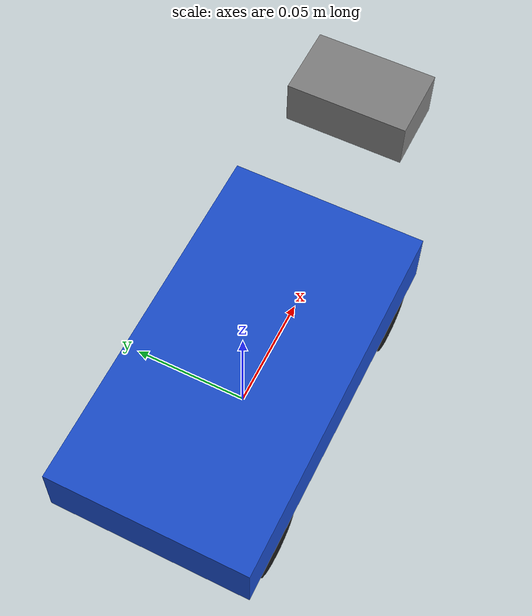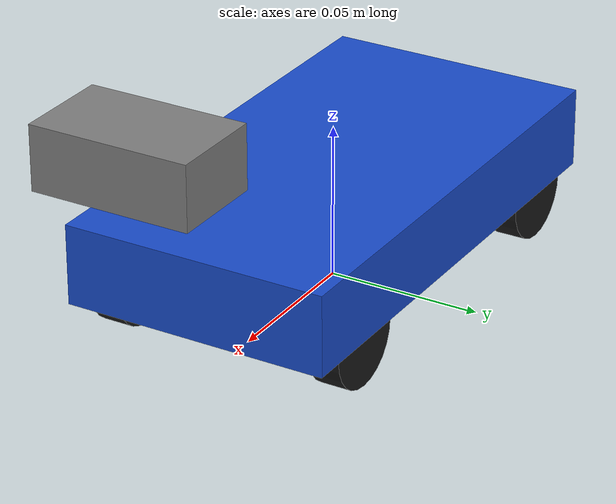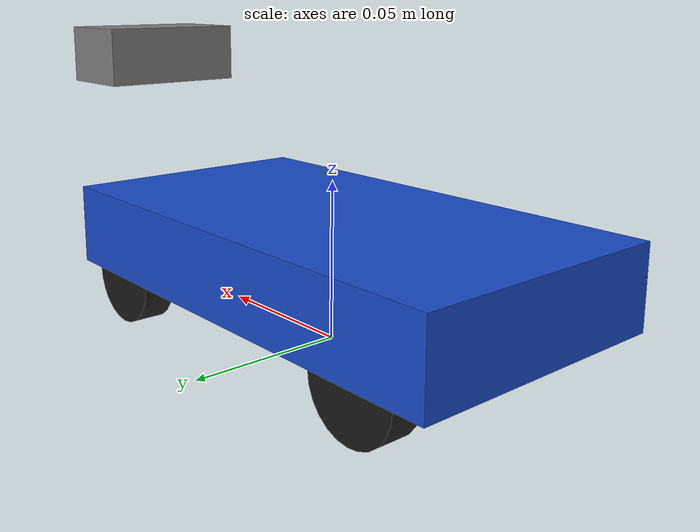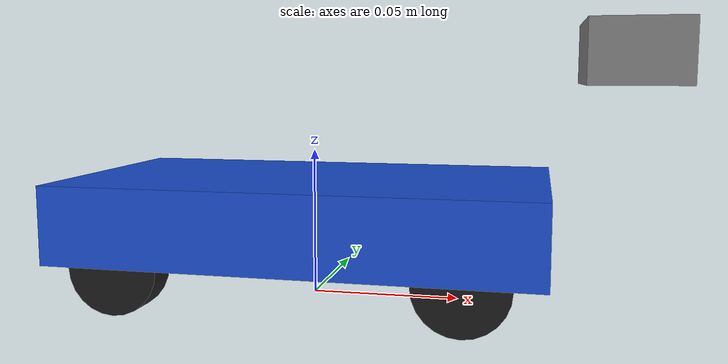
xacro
<?xml version="1.0"?>
<robot xmlns:xacro="http://www.ros.org/wiki/xacro" name="jetson_car">

  <!-- ===== Parameters ===== -->
  <xacro:property name="wheelbase" value="0.110"/>
  <xacro:property name="track_width" value="0.075"/>
  <xacro:property name="wheel_radius" value="0.015"/>
  <xacro:property name="wheel_width" value="0.010"/>
  <xacro:property name="chassis_length" value="0.160"/>
  <xacro:property name="chassis_width" value="0.086"/>
  <xacro:property name="chassis_height" value="0.026"/>
  <xacro:property name="max_steer" value="0.585"/>
  <xacro:property name="camera_x" value="0.104"/>
  <xacro:property name="camera_z" value="0.068"/>

  <xacro:property name="half_wheelbase" value="${wheelbase / 2}"/>
  <xacro:property name="half_track" value="${track_width / 2}"/>

  <!-- display.launch.py sets lock_drive_joints:=true so GUI only exposes steer sliders -->
  <xacro:arg name="lock_drive_joints" default="false"/>

  <!-- ===== Materials ===== -->
  <material name="blue"><color rgba="0.1 0.3 0.8 1.0"/></material>
  <material name="black"><color rgba="0.1 0.1 0.1 1.0"/></material>
  <material name="grey"><color rgba="0.5 0.5 0.5 1.0"/></material>

  <!-- ===== Chassis ===== -->
  <!-- base_link: robot body center; z=0 is wheel axle height -->
  <link name="base_link">
    <visual>
      <geometry><box size="${chassis_length} ${chassis_width} ${chassis_height}"/></geometry>
      <origin xyz="0 0 ${chassis_height/2}" rpy="0 0 0"/>    <!-- lift box so bottom sits at z=0 -->
      <material name="blue"/>
    </visual>
    <collision>
      <geometry><box size="${chassis_length} ${chassis_width} ${chassis_height}"/></geometry>
      <origin xyz="0 0 ${chassis_height/2}" rpy="0 0 0"/>    <!-- lift box so bottom sits at z=0 -->
    </collision>
    <inertial>
      <mass value="1.5"/>
      <origin xyz="0 0 ${chassis_height/2}" rpy="0 0 0"/>    <!-- lift box so bottom sits at z=0 -->
      <inertia ixx="0.01" ixy="0" ixz="0" iyy="0.02" iyz="0" izz="0.01"/>
    </inertial>
  </link>

  <!-- base_footprint: ground projection; standard root for navigation stacks -->
  <link name="base_footprint"/>

  <joint name="base_footprint_joint" type="fixed">
    <parent link="base_footprint"/>
    <child link="base_link"/>
    <origin xyz="0 0 ${wheel_radius}" rpy="0 0 0"/>    <!-- lift body by one wheel radius -->
  </joint>

  <!-- ===== Wheel macro ===== -->
  <xacro:macro name="wheel_link" params="prefix">
    <link name="${prefix}_wheel">
      <visual>
        <geometry><cylinder radius="${wheel_radius}" length="${wheel_width}"/></geometry>
        <origin xyz="0 0 0" rpy="1.5708 0 0"/>    <!-- rotate cylinder to roll along y -->
        <material name="black"/>
      </visual>
      <collision>
        <geometry><cylinder radius="${wheel_radius}" length="${wheel_width}"/></geometry>
        <origin xyz="0 0 0" rpy="1.5708 0 0"/>    <!-- rotate cylinder to roll along y -->
      </collision>
      <inertial>
        <mass value="0.1"/>
        <inertia ixx="0.001" ixy="0" ixz="0" iyy="0.001" iyz="0" izz="0.001"/>
      </inertial>
    </link>
  </xacro:macro>

  <xacro:macro name="knuckle_link" params="prefix">
    <link name="${prefix}_knuckle">
      <inertial>
        <mass value="0.01"/>
        <inertia ixx="0.00001" ixy="0" ixz="0" iyy="0.00001" iyz="0" izz="0.00001"/>
      </inertial>
    </link>
  </xacro:macro>

  <!-- Front: steer (z) on knuckle, roll (y) on wheel -->
  <xacro:macro name="front_wheel_assembly" params="prefix y_offset mimic_joint">
    <xacro:knuckle_link prefix="${prefix}"/>
    <xacro:wheel_link prefix="${prefix}"/>

    <joint name="${prefix}_steer_joint" type="revolute">
      <parent link="base_link"/>
      <child link="${prefix}_knuckle"/>
      <origin xyz="${half_wheelbase} ${y_offset} 0" rpy="0 0 0"/>
      <axis xyz="0 0 1"/>    <!-- steer about vertical z -->
      <limit lower="${-max_steer}" upper="${max_steer}" effort="10" velocity="5"/>
    </joint>

    <xacro:if value="$(arg lock_drive_joints)">
      <joint name="${prefix}_drive_joint" type="fixed">
        <parent link="${prefix}_knuckle"/>
        <child link="${prefix}_wheel"/>
        <origin xyz="0 0 0" rpy="0 0 0"/>
      </joint>
    </xacro:if>

    <xacro:unless value="$(arg lock_drive_joints)">
      <joint name="${prefix}_drive_joint" type="continuous">
        <parent link="${prefix}_knuckle"/>
        <child link="${prefix}_wheel"/>
        <origin xyz="0 0 0" rpy="0 0 0"/>
        <axis xyz="0 1 0"/>    <!-- roll about wheel axle (y) -->
        <mimic joint="${mimic_joint}" multiplier="1.0" offset="0.0"/>
      </joint>
    </xacro:unless>
  </xacro:macro>

  <xacro:front_wheel_assembly prefix="front_left" y_offset="${half_track}" mimic_joint="rear_left_drive_joint"/>
  <xacro:front_wheel_assembly prefix="front_right" y_offset="${-half_track}" mimic_joint="rear_right_drive_joint"/>

  <!-- Rear: roll only (no steer) -->
  <xacro:wheel_link prefix="rear_left"/>
  <xacro:wheel_link prefix="rear_right"/>

  <xacro:if value="$(arg lock_drive_joints)">
    <joint name="rear_left_drive_joint" type="fixed">
      <parent link="base_link"/>
      <child link="rear_left_wheel"/>
      <origin xyz="${-half_wheelbase} ${half_track} 0" rpy="0 0 0"/>
    </joint>

    <joint name="rear_right_drive_joint" type="fixed">
      <parent link="base_link"/>
      <child link="rear_right_wheel"/>
      <origin xyz="${-half_wheelbase} ${-half_track} 0" rpy="0 0 0"/>
    </joint>
  </xacro:if>

  <xacro:unless value="$(arg lock_drive_joints)">
    <joint name="rear_left_drive_joint" type="continuous">
      <parent link="base_link"/>
      <child link="rear_left_wheel"/>
      <origin xyz="${-half_wheelbase} ${half_track} 0" rpy="0 0 0"/>
      <axis xyz="0 1 0"/>    <!-- roll about wheel axle (y) -->
    </joint>

    <joint name="rear_right_drive_joint" type="continuous">
      <parent link="base_link"/>
      <child link="rear_right_wheel"/>
      <origin xyz="${-half_wheelbase} ${-half_track} 0" rpy="0 0 0"/>
      <axis xyz="0 1 0"/>
    </joint>
  </xacro:unless>

  <!-- ===== Camera ===== -->
  <link name="camera_link">
    <visual>
      <geometry><box size="0.03 0.05 0.02"/></geometry>
      <material name="grey"/>
    </visual>
    <inertial>
      <mass value="0.05"/>
      <inertia ixx="0.0001" ixy="0" ixz="0" iyy="0.0001" iyz="0" izz="0.0001"/>
    </inertial>
  </link>

  <joint name="camera_joint" type="fixed">
    <parent link="base_link"/>
    <child link="camera_link"/>
    <origin xyz="${camera_x} 0 ${camera_z}" rpy="0 0 0"/>
  </joint>

  <link name="camera_optical_frame"/>

  <joint name="camera_optical_joint" type="fixed">
    <parent link="camera_link"/>
    <child link="camera_optical_frame"/>
    <origin xyz="0 0 0" rpy="-1.5708 0 -1.5708"/>
  </joint>

  <!-- ===== IMU ===== -->
  <link name="imu_link">
    <inertial>
      <mass value="0.01"/>
      <inertia ixx="0.00001" ixy="0" ixz="0" iyy="0.00001" iyz="0" izz="0.00001"/>
    </inertial>
  </link>

  <joint name="imu_joint" type="fixed">
    <parent link="base_link"/>
    <child link="imu_link"/>
    <origin xyz="0 0 0.04" rpy="0 0 0"/>
  </joint>

  <!-- ===== Gazebo ===== -->
  <gazebo reference="base_link">
    <material>Gazebo/Blue</material>
    <mu1>0.8</mu1>
    <mu2>0.8</mu2>
  </gazebo>

  <xacro:macro name="wheel_gazebo_friction" params="link_name">
    <gazebo reference="${link_name}">
      <mu1>1.0</mu1>
      <mu2>1.0</mu2>
    </gazebo>
  </xacro:macro>

  <xacro:wheel_gazebo_friction link_name="front_left_wheel"/>
  <xacro:wheel_gazebo_friction link_name="front_right_wheel"/>
  <xacro:wheel_gazebo_friction link_name="rear_left_wheel"/>
  <xacro:wheel_gazebo_friction link_name="rear_right_wheel"/>

  <ros2_control name="GazeboSimSystem" type="system">
    <hardware>
      <plugin>gz_ros2_control/GazeboSimSystem</plugin>
    </hardware>

    <joint name="rear_left_drive_joint">
      <command_interface name="velocity"/>    <!-- drive: speed command -->
      <state_interface name="position"/>
      <state_interface name="velocity"/>
    </joint>
    <joint name="rear_right_drive_joint">
      <command_interface name="velocity"/>
      <state_interface name="position"/>
      <state_interface name="velocity"/>
    </joint>
    <joint name="front_left_steer_joint">
      <command_interface name="position"/>    <!-- steer: angle command -->
      <state_interface name="position"/>
      <state_interface name="velocity"/>
    </joint>
    <joint name="front_right_steer_joint">
      <command_interface name="position"/>
      <state_interface name="position"/>
      <state_interface name="velocity"/>
    </joint>
  </ros2_control>

  <gazebo>
    <plugin filename="gz_ros2_control-system"
            name="gz_ros2_control::GazeboSimROS2ControlPlugin">
      <parameters>$(find jetson_car_description)/config/controllers.yaml</parameters>
    </plugin>
  </gazebo>

    <gazebo reference="camera_link">
    <sensor name="camera" type="camera">
      <camera>
        <horizontal_fov>1.171</horizontal_fov>  <!-- 67.0° — IMX219 @ 4:3, from 79.3° diagonal -->
        <image>
          <width>640</width>  <!-- VO resolution (native IMX219 is 3280×2464) -->
          <height>480</height>
          <format>R8G8B8</format>  <!-- 8-bit RGB, 3 bytes per pixel -->
        </image>
        <clip>
          <near>0.05</near>  <!-- closest render distance (m) -->
          <far>50.0</far>  <!-- farthest render distance (m) -->
        </clip>
        <noise>
          <type>gaussian</type>
          <mean>0.0</mean>
          <stddev>0.007</stddev>
        </noise>
      </camera>
      <always_on>true</always_on>  <!-- publish even when no subscriber -->
      <update_rate>30</update_rate>
      <visualize>true</visualize>  <!-- show camera frustum in Gazebo GUI -->
      <topic>/camera</topic>  <!-- Gazebo Transport: /camera + /camera_info -->
    </sensor>
  </gazebo>

  <gazebo reference="imu_link">
    <sensor name="imu" type="imu">
      <always_on>true</always_on>  <!-- continuous streaming -->
      <update_rate>100</update_rate>
      <topic>/imu</topic>  <!-- Gazebo Transport name for IMU stream -->
      <imu>
        <angular_velocity>
          <x><noise type="gaussian"><mean>0</mean><stddev>0.0002</stddev></noise></x>  <!-- gyro x -->
          <y><noise type="gaussian"><mean>0</mean><stddev>0.0002</stddev></noise></y>  <!-- gyro y -->
          <z><noise type="gaussian"><mean>0</mean><stddev>0.0002</stddev></noise></z>  <!-- gyro z -->
        </angular_velocity>
        <linear_acceleration>
          <x><noise type="gaussian"><mean>0</mean><stddev>0.01</stddev></noise></x>  <!-- accel x -->
          <y><noise type="gaussian"><mean>0</mean><stddev>0.01</stddev></noise></y>  <!-- accel y -->
          <z><noise type="gaussian"><mean>0</mean><stddev>0.01</stddev></noise></z>  <!-- accel z (includes gravity) -->
        </linear_acceleration>
      </imu>
    </sensor>
  </gazebo>
</robot>
